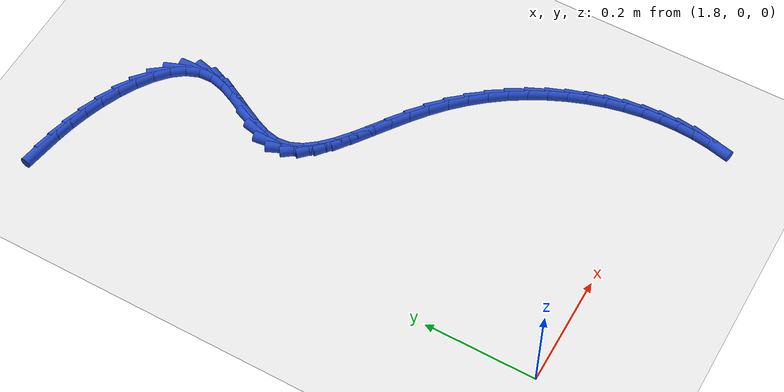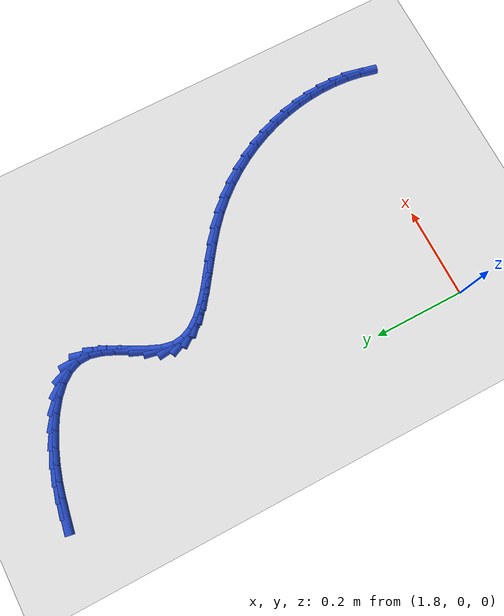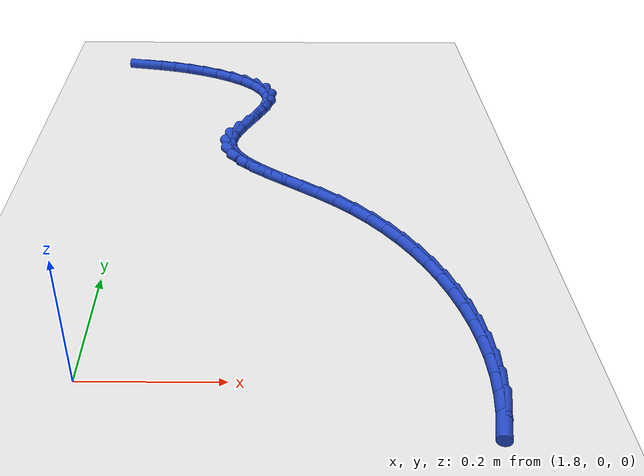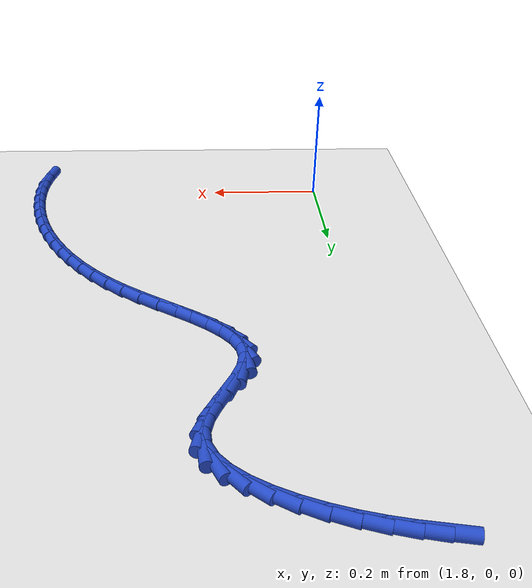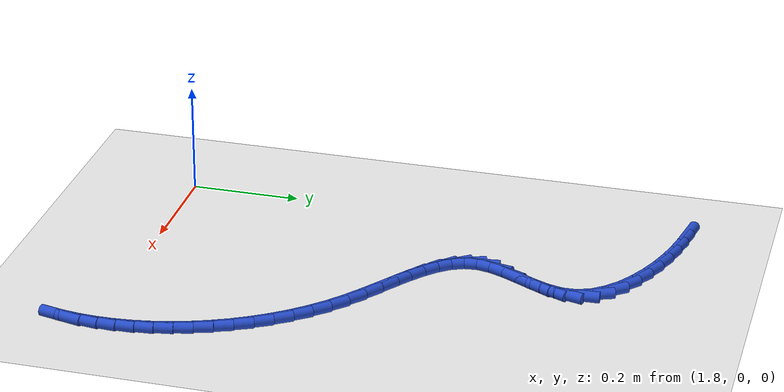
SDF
<sdf version="1.6">
 <world name="default">
  <model name="ground_plane">
   <static>1</static>
   <link name="link">
    <collision name="collision">
     <geometry><plane><normal>0 0 1</normal><size>100 100</size></plane></geometry>
     <surface><friction><ode><mu>100</mu><mu2>50</mu2></ode></friction></surface>
    </collision>
    <visual name="visual">
     <cast_shadows>0</cast_shadows>
     <geometry><plane><normal>0 0 1</normal><size>100 100</size></plane></geometry>
     <material>
      <script><uri>file://media/materials/scripts/gazebo.material</uri><name>Gazebo/WhiteGlow</name></script>
     </material>
    </visual>
   </link>
  </model>
  <model name="line">
   <link name="link_82">
    <pose>1.776046343385954 0.9251668092315403 0.01 0 1.57 -0.17744202165072062</pose>
    <collision name="collision">
     <geometry><cylinder><radius>0.01</radius><length>0.08</length></cylinder></geometry>
    </collision>
    <visual name="visual">
     <material>
      <script><name>Gazebo/Blue</name><uri>file://media/materials/scripts/gazebo.material</uri></script>
     </material>
     <geometry><cylinder><radius>0.01</radius><length>0.08</length></cylinder></geometry>
    </visual>
   </link>
   <link name="link_83">
    <pose>1.8070640769637452 0.9196044588602509 0.01 0 1.57 -0.2250801584139318</pose>
    <collision name="collision">
     <geometry><cylinder><radius>0.01</radius><length>0.08</length></cylinder></geometry>
    </collision>
    <visual name="visual">
     <material>
      <script><name>Gazebo/Blue</name><uri>file://media/materials/scripts/gazebo.material</uri></script>
     </material>
     <geometry><cylinder><radius>0.01</radius><length>0.08</length></cylinder></geometry>
    </visual>
   </link>
   <link name="link_84">
    <pose>1.8385390948616713 0.9123979472863212 0.01 0 1.57 -0.2805658903088272</pose>
    <collision name="collision">
     <geometry><cylinder><radius>0.01</radius><length>0.08</length></cylinder></geometry>
    </collision>
    <visual name="visual">
     <material>
      <script><name>Gazebo/Blue</name><uri>file://media/materials/scripts/gazebo.material</uri></script>
     </material>
     <geometry><cylinder><radius>0.01</radius><length>0.08</length></cylinder></geometry>
    </visual>
   </link>
   <link name="link_85">
    <pose>1.87047023232155 0.9031964437531861 0.01 0 1.57 -0.3425139290725775</pose>
    <collision name="collision">
     <geometry><cylinder><radius>0.01</radius><length>0.08</length></cylinder></geometry>
    </collision>
    <visual name="visual">
     <material>
      <script><name>Gazebo/Blue</name><uri>file://media/materials/scripts/gazebo.material</uri></script>
     </material>
     <geometry><cylinder><radius>0.01</radius><length>0.08</length></cylinder></geometry>
    </visual>
   </link>
   <link name="link_86">
    <pose>1.9028248990550056 0.8916598082454167 0.01 0 1.57 -0.4111547763833256</pose>
    <collision name="collision">
     <geometry><cylinder><radius>0.01</radius><length>0.08</length></cylinder></geometry>
    </collision>
    <visual name="visual">
     <material>
      <script><name>Gazebo/Blue</name><uri>file://media/materials/scripts/gazebo.material</uri></script>
     </material>
     <geometry><cylinder><radius>0.01</radius><length>0.08</length></cylinder></geometry>
    </visual>
   </link>
   <link name="link_87">
    <pose>1.9348886043626592 0.8776798784017281 0.01 0 1.57 -0.4923730612235152</pose>
    <collision name="collision">
     <geometry><cylinder><radius>0.01</radius><length>0.08</length></cylinder></geometry>
    </collision>
    <visual name="visual">
     <material>
      <script><name>Gazebo/Blue</name><uri>file://media/materials/scripts/gazebo.material</uri></script>
     </material>
     <geometry><cylinder><radius>0.01</radius><length>0.08</length></cylinder></geometry>
    </visual>
   </link>
   <link name="link_88">
    <pose>1.9652869270332562 0.8613729955120626 0.01 0 1.57 -0.5952448297880814</pose>
    <collision name="collision">
     <geometry><cylinder><radius>0.01</radius><length>0.08</length></cylinder></geometry>
    </collision>
    <visual name="visual">
     <material>
      <script><name>Gazebo/Blue</name><uri>file://media/materials/scripts/gazebo.material</uri></script>
     </material>
     <geometry><cylinder><radius>0.01</radius><length>0.08</length></cylinder></geometry>
    </visual>
   </link>
   <link name="link_89">
    <pose>1.9926184157825257 0.8428646963043297 0.01 0 1.57 -0.7329913712005618</pose>
    <collision name="collision">
     <geometry><cylinder><radius>0.01</radius><length>0.08</length></cylinder></geometry>
    </collision>
    <visual name="visual">
     <material>
      <script><name>Gazebo/Blue</name><uri>file://media/materials/scripts/gazebo.material</uri></script>
     </material>
     <geometry><cylinder><radius>0.01</radius><length>0.08</length></cylinder></geometry>
    </visual>
   </link>
   <link name="link_90">
    <pose>2.015481619326193 0.8222805175064397 0.01 0 1.57 -0.9246711650471593</pose>
    <collision name="collision">
     <geometry><cylinder><radius>0.01</radius><length>0.08</length></cylinder></geometry>
    </collision>
    <visual name="visual">
     <material>
      <script><name>Gazebo/Blue</name><uri>file://media/materials/scripts/gazebo.material</uri></script>
     </material>
     <geometry><cylinder><radius>0.01</radius><length>0.08</length></cylinder></geometry>
    </visual>
   </link>
   <link name="link_91">
    <pose>2.032475086379988 0.7997459958463036 0.01 0 1.57 -1.1910493539637153</pose>
    <collision name="collision">
     <geometry><cylinder><radius>0.01</radius><length>0.08</length></cylinder></geometry>
    </collision>
    <visual name="visual">
     <material>
      <script><name>Gazebo/Blue</name><uri>file://media/materials/scripts/gazebo.material</uri></script>
     </material>
     <geometry><cylinder><radius>0.01</radius><length>0.08</length></cylinder></geometry>
    </visual>
   </link>
   <link name="link_92">
    <pose>2.042197365659636 0.775386668051831 0.01 0 1.57 -1.5286476686841142</pose>
    <collision name="collision">
     <geometry><cylinder><radius>0.01</radius><length>0.08</length></cylinder></geometry>
    </collision>
    <visual name="visual">
     <material>
      <script><name>Gazebo/Blue</name><uri>file://media/materials/scripts/gazebo.material</uri></script>
     </material>
     <geometry><cylinder><radius>0.01</radius><length>0.08</length></cylinder></geometry>
    </visual>
   </link>
   <link name="link_93">
    <pose>2.043296127272895 0.7493333858841625 0.01 0 1.57 1.318619982152419</pose>
    <collision name="collision">
     <geometry><cylinder><radius>0.01</radius><length>0.08</length></cylinder></geometry>
    </collision>
    <visual name="visual">
     <material>
      <script><name>Gazebo/Blue</name><uri>file://media/materials/scripts/gazebo.material</uri></script>
     </material>
     <geometry><cylinder><radius>0.01</radius><length>0.08</length></cylinder></geometry>
    </visual>
   </link>
   <link name="link_94">
    <pose>2.0362309648848442 0.7219130548708351 0.01 0 1.57 1.1545811638355425</pose>
    <collision name="collision">
     <geometry><cylinder><radius>0.01</radius><length>0.08</length></cylinder></geometry>
    </collision>
    <visual name="visual">
     <material>
      <script><name>Gazebo/Blue</name><uri>file://media/materials/scripts/gazebo.material</uri></script>
     </material>
     <geometry><cylinder><radius>0.01</radius><length>0.08</length></cylinder></geometry>
    </visual>
   </link>
   <link name="link_95">
    <pose>2.023760230034916 0.6937013107562188 0.01 0 1.57 1.0858686043841805</pose>
    <collision name="collision">
     <geometry><cylinder><radius>0.01</radius><length>0.08</length></cylinder></geometry>
    </collision>
    <visual name="visual">
     <material>
      <script><name>Gazebo/Blue</name><uri>file://media/materials/scripts/gazebo.material</uri></script>
     </material>
     <geometry><cylinder><radius>0.01</radius><length>0.08</length></cylinder></geometry>
    </visual>
   </link>
   <link name="link_96">
    <pose>2.008790494398159 0.6652898270009149 0.01 0 1.57 1.0915018394126932</pose>
    <collision name="collision">
     <geometry><cylinder><radius>0.01</radius><length>0.08</length></cylinder></geometry>
    </collision>
    <visual name="visual">
     <material>
      <script><name>Gazebo/Blue</name><uri>file://media/materials/scripts/gazebo.material</uri></script>
     </material>
     <geometry><cylinder><radius>0.01</radius><length>0.08</length></cylinder></geometry>
    </visual>
   </link>
   <link name="link_97">
    <pose>1.9942283296496188 0.6372702770655234 0.01 0 1.57 1.1765396497129519</pose>
    <collision name="collision">
     <geometry><cylinder><radius>0.01</radius><length>0.08</length></cylinder></geometry>
    </collision>
    <visual name="visual">
     <material>
      <script><name>Gazebo/Blue</name><uri>file://media/materials/scripts/gazebo.material</uri></script>
     </material>
     <geometry><cylinder><radius>0.01</radius><length>0.08</length></cylinder></geometry>
    </visual>
   </link>
   <link name="link_98">
    <pose>1.982980307464344 0.6102343344106455 0.01 0 1.57 1.375379128894551</pose>
    <collision name="collision">
     <geometry><cylinder><radius>0.01</radius><length>0.08</length></cylinder></geometry>
    </collision>
    <visual name="visual">
     <material>
      <script><name>Gazebo/Blue</name><uri>file://media/materials/scripts/gazebo.material</uri></script>
     </material>
     <geometry><cylinder><radius>0.01</radius><length>0.08</length></cylinder></geometry>
    </visual>
   </link>
   <link name="link_99">
    <pose>1.9779399017295285 0.5847704497454801 0.01 0 1.57 -1.4547806630440512</pose>
    <collision name="collision">
     <geometry><cylinder><radius>0.01</radius><length>0.08</length></cylinder></geometry>
    </collision>
    <visual name="visual">
     <material>
      <script><name>Gazebo/Blue</name><uri>file://media/materials/scripts/gazebo.material</uri></script>
     </material>
     <geometry><cylinder><radius>0.01</radius><length>0.08</length></cylinder></geometry>
    </visual>
   </link>
   <link name="link_100">
    <pose>1.9806931442643199 0.5611453735956456 0.01 0 1.57 -1.1562132098907858</pose>
    <collision name="collision">
     <geometry><cylinder><radius>0.01</radius><length>0.08</length></cylinder></geometry>
    </collision>
    <visual name="visual">
     <material>
      <script><name>Gazebo/Blue</name><uri>file://media/materials/scripts/gazebo.material</uri></script>
     </material>
     <geometry><cylinder><radius>0.01</radius><length>0.08</length></cylinder></geometry>
    </visual>
   </link>
   <link name="link_101">
    <pose>1.9904238193898514 0.5390347760251423 0.01 0 1.57 -0.930469099806655</pose>
    <collision name="collision">
     <geometry><cylinder><radius>0.01</radius><length>0.08</length></cylinder></geometry>
    </collision>
    <visual name="visual">
     <material>
      <script><name>Gazebo/Blue</name><uri>file://media/materials/scripts/gazebo.material</uri></script>
     </material>
     <geometry><cylinder><radius>0.01</radius><length>0.08</length></cylinder></geometry>
    </visual>
   </link>
   <link name="link_102">
    <pose>2.0060579137440717 0.518050895176943 0.01 0 1.57 -0.7800289522063336</pose>
    <collision name="collision">
     <geometry><cylinder><radius>0.01</radius><length>0.08</length></cylinder></geometry>
    </collision>
    <visual name="visual">
     <material>
      <script><name>Gazebo/Blue</name><uri>file://media/materials/scripts/gazebo.material</uri></script>
     </material>
     <geometry><cylinder><radius>0.01</radius><length>0.08</length></cylinder></geometry>
    </visual>
   </link>
   <link name="link_103">
    <pose>2.0265214139649275 0.49780596919402126 0.01 0 1.57 -0.6876624425071551</pose>
    <collision name="collision">
     <geometry><cylinder><radius>0.01</radius><length>0.08</length></cylinder></geometry>
    </collision>
    <visual name="visual">
     <material>
      <script><name>Gazebo/Blue</name><uri>file://media/materials/scripts/gazebo.material</uri></script>
     </material>
     <geometry><cylinder><radius>0.01</radius><length>0.08</length></cylinder></geometry>
    </visual>
   </link>
   <link name="link_104">
    <pose>2.0507403066903676 0.47791223621935 0.01 0 1.57 -0.6376489941854488</pose>
    <collision name="collision">
     <geometry><cylinder><radius>0.01</radius><length>0.08</length></cylinder></geometry>
    </collision>
    <visual name="visual">
     <material>
      <script><name>Gazebo/Blue</name><uri>file://media/materials/scripts/gazebo.material</uri></script>
     </material>
     <geometry><cylinder><radius>0.01</radius><length>0.08</length></cylinder></geometry>
    </visual>
   </link>
   <link name="link_105">
    <pose>2.077640578558337 0.4579819343959028 0.01 0 1.57 -0.620064435834529</pose>
    <collision name="collision">
     <geometry><cylinder><radius>0.01</radius><length>0.08</length></cylinder></geometry>
    </collision>
    <visual name="visual">
     <material>
      <script><name>Gazebo/Blue</name><uri>file://media/materials/scripts/gazebo.material</uri></script>
     </material>
     <geometry><cylinder><radius>0.01</radius><length>0.08</length></cylinder></geometry>
    </visual>
   </link>
   <link name="link_106">
    <pose>2.106148216206787 0.4376273018666524 0.01 0 1.57 -0.6298316201848804</pose>
    <collision name="collision">
     <geometry><cylinder><radius>0.01</radius><length>0.08</length></cylinder></geometry>
    </collision>
    <visual name="visual">
     <material>
      <script><name>Gazebo/Blue</name><uri>file://media/materials/scripts/gazebo.material</uri></script>
     </material>
     <geometry><cylinder><radius>0.01</radius><length>0.08</length></cylinder></geometry>
    </visual>
   </link>
   <link name="link_107">
    <pose>2.1351892062736617 0.4164605767745719 0.01 0 1.57 -0.6653932903284648</pose>
    <collision name="collision">
     <geometry><cylinder><radius>0.01</radius><length>0.08</length></cylinder></geometry>
    </collision>
    <visual name="visual">
     <material>
      <script><name>Gazebo/Blue</name><uri>file://media/materials/scripts/gazebo.material</uri></script>
     </material>
     <geometry><cylinder><radius>0.01</radius><length>0.08</length></cylinder></geometry>
    </visual>
   </link>
   <link name="link_108">
    <pose>2.163689535396911 0.39409399726263483 0.01 0 1.57 -0.7267397975951311</pose>
    <collision name="collision">
     <geometry><cylinder><radius>0.01</radius><length>0.08</length></cylinder></geometry>
    </collision>
    <visual name="visual">
     <material>
      <script><name>Gazebo/Blue</name><uri>file://media/materials/scripts/gazebo.material</uri></script>
     </material>
     <geometry><cylinder><radius>0.01</radius><length>0.08</length></cylinder></geometry>
    </visual>
   </link>
   <link name="link_109">
    <pose>2.1906110599096924 0.3701590561176986 0.01 0 1.57 -0.7994460085410787</pose>
    <collision name="collision">
     <geometry><cylinder><radius>0.01</radius><length>0.08</length></cylinder></geometry>
    </collision>
    <visual name="visual">
     <material>
      <script><name>Gazebo/Blue</name><uri>file://media/materials/scripts/gazebo.material</uri></script>
     </material>
     <geometry><cylinder><radius>0.01</radius><length>0.08</length></cylinder></geometry>
    </visual>
   </link>
   <link name="link_110">
    <pose>2.215474384512118 0.3445871790020914 0.01 0 1.57 -0.8709763144311438</pose>
    <collision name="collision">
     <geometry><cylinder><radius>0.01</radius><length>0.08</length></cylinder></geometry>
    </collision>
    <visual name="visual">
     <material>
      <script><name>Gazebo/Blue</name><uri>file://media/materials/scripts/gazebo.material</uri></script>
     </material>
     <geometry><cylinder><radius>0.01</radius><length>0.08</length></cylinder></geometry>
    </visual>
   </link>
   <link name="link_111">
    <pose>2.2382417934783883 0.3175468826061014 0.01 0 1.57 -0.9410893523907385</pose>
    <collision name="collision">
     <geometry><cylinder><radius>0.01</radius><length>0.08</length></cylinder></geometry>
    </collision>
    <visual name="visual">
     <material>
      <script><name>Gazebo/Blue</name><uri>file://media/materials/scripts/gazebo.material</uri></script>
     </material>
     <geometry><cylinder><radius>0.01</radius><length>0.08</length></cylinder></geometry>
    </visual>
   </link>
   <link name="link_112">
    <pose>2.258887620541846 0.289213151699644 0.01 0 1.57 -1.0099790785316913</pose>
    <collision name="collision">
     <geometry><cylinder><radius>0.01</radius><length>0.08</length></cylinder></geometry>
    </collision>
    <visual name="visual">
     <material>
      <script><name>Gazebo/Blue</name><uri>file://media/materials/scripts/gazebo.material</uri></script>
     </material>
     <geometry><cylinder><radius>0.01</radius><length>0.08</length></cylinder></geometry>
    </visual>
   </link>
   <link name="link_113">
    <pose>2.277386199435835 0.25976097105263435 0.01 0 1.57 -1.0779068953165094</pose>
    <collision name="collision">
     <geometry><cylinder><radius>0.01</radius><length>0.08</length></cylinder></geometry>
    </collision>
    <visual name="visual">
     <material>
      <script><name>Gazebo/Blue</name><uri>file://media/materials/scripts/gazebo.material</uri></script>
     </material>
     <geometry><cylinder><radius>0.01</radius><length>0.08</length></cylinder></geometry>
    </visual>
   </link>
   <link name="link_114">
    <pose>2.2937118638936984 0.2293653254349876 0.01 0 1.57 -1.14519124760451</pose>
    <collision name="collision">
     <geometry><cylinder><radius>0.01</radius><length>0.08</length></cylinder></geometry>
    </collision>
    <visual name="visual">
     <material>
      <script><name>Gazebo/Blue</name><uri>file://media/materials/scripts/gazebo.material</uri></script>
     </material>
     <geometry><cylinder><radius>0.01</radius><length>0.08</length></cylinder></geometry>
    </visual>
   </link>
   <link name="link_115">
    <pose>2.3078389476487784 0.19820119961661908 0.01 0 1.57 -1.2121987922935775</pose>
    <collision name="collision">
     <geometry><cylinder><radius>0.01</radius><length>0.08</length></cylinder></geometry>
    </collision>
    <visual name="visual">
     <material>
      <script><name>Gazebo/Blue</name><uri>file://media/materials/scripts/gazebo.material</uri></script>
     </material>
     <geometry><cylinder><radius>0.01</radius><length>0.08</length></cylinder></geometry>
    </visual>
   </link>
   <link name="link_116">
    <pose>2.3197417844344206 0.16644357836744397 0.01 0 1.57 -1.2793371379139402</pose>
    <collision name="collision">
     <geometry><cylinder><radius>0.01</radius><length>0.08</length></cylinder></geometry>
    </collision>
    <visual name="visual">
     <material>
      <script><name>Gazebo/Blue</name><uri>file://media/materials/scripts/gazebo.material</uri></script>
     </material>
     <geometry><cylinder><radius>0.01</radius><length>0.08</length></cylinder></geometry>
    </visual>
   </link>
   <link name="link_117">
    <pose>2.329394707983967 0.1342674464573774 0.01 0 1.57 -1.3470487286960626</pose>
    <collision name="collision">
     <geometry><cylinder><radius>0.01</radius><length>0.08</length></cylinder></geometry>
    </collision>
    <visual name="visual">
     <material>
      <script><name>Gazebo/Blue</name><uri>file://media/materials/scripts/gazebo.material</uri></script>
     </material>
     <geometry><cylinder><radius>0.01</radius><length>0.08</length></cylinder></geometry>
    </visual>
   </link>
   <link name="link_118">
    <pose>2.3367720520307613 0.10184778865633475 0.01 0 1.57 -1.4158050775643691</pose>
    <collision name="collision">
     <geometry><cylinder><radius>0.01</radius><length>0.08</length></cylinder></geometry>
    </collision>
    <visual name="visual">
     <material>
      <script><name>Gazebo/Blue</name><uri>file://media/materials/scripts/gazebo.material</uri></script>
     </material>
     <geometry><cylinder><radius>0.01</radius><length>0.08</length></cylinder></geometry>
    </visual>
   </link>
   <link name="link_119">
    <pose>2.341848150308147 0.06935958973423112 0.01 0 1.57 -1.4861001956034792</pose>
    <collision name="collision">
     <geometry><cylinder><radius>0.01</radius><length>0.08</length></cylinder></geometry>
    </collision>
    <visual name="visual">
     <material>
      <script><name>Gazebo/Blue</name><uri>file://media/materials/scripts/gazebo.material</uri></script>
     </material>
     <geometry><cylinder><radius>0.01</radius><length>0.08</length></cylinder></geometry>
    </visual>
   </link>
   <link name="link_120">
    <pose>2.344597336549467 0.03697783446098221 0.01 0 1.57 -1.5584416937352172</pose>
    <collision name="collision">
     <geometry><cylinder><radius>0.01</radius><length>0.08</length></cylinder></geometry>
    </collision>
    <visual name="visual">
     <material>
      <script><name>Gazebo/Blue</name><uri>file://media/materials/scripts/gazebo.material</uri></script>
     </material>
     <geometry><cylinder><radius>0.01</radius><length>0.08</length></cylinder></geometry>
    </visual>
   </link>
   <link name="link_121">
    <pose>2.3449939444880648 0.004877507606502365 0.01 0 1.57 1.5082550018366019</pose>
    <collision name="collision">
     <geometry><cylinder><radius>0.01</radius><length>0.08</length></cylinder></geometry>
    </collision>
    <visual name="visual">
     <material>
      <script><name>Gazebo/Blue</name><uri>file://media/materials/scripts/gazebo.material</uri></script>
     </material>
     <geometry><cylinder><radius>0.01</radius><length>0.08</length></cylinder></geometry>
    </visual>
   </link>
   <link name="link_122">
    <pose>2.3430123078572835 -0.02676640605929278 0.01 0 1.57 1.4303156209410162</pose>
    <collision name="collision">
     <geometry><cylinder><radius>0.01</radius><length>0.08</length></cylinder></geometry>
    </collision>
    <visual name="visual">
     <material>
      <script><name>Gazebo/Blue</name><uri>file://media/materials/scripts/gazebo.material</uri></script>
     </material>
     <geometry><cylinder><radius>0.01</radius><length>0.08</length></cylinder></geometry>
    </visual>
   </link>
   <link name="link_123">
    <pose>2.3386267603904676 -0.05777892176648798 0.01 0 1.57 1.3488913072212063</pose>
    <collision name="collision">
     <geometry><cylinder><radius>0.01</radius><length>0.08</length></cylinder></geometry>
    </collision>
    <visual name="visual">
     <material>
      <script><name>Gazebo/Blue</name><uri>file://media/materials/scripts/gazebo.material</uri></script>
     </material>
     <geometry><cylinder><radius>0.01</radius><length>0.08</length></cylinder></geometry>
    </visual>
   </link>
  </model>
 </world>
</sdf>
